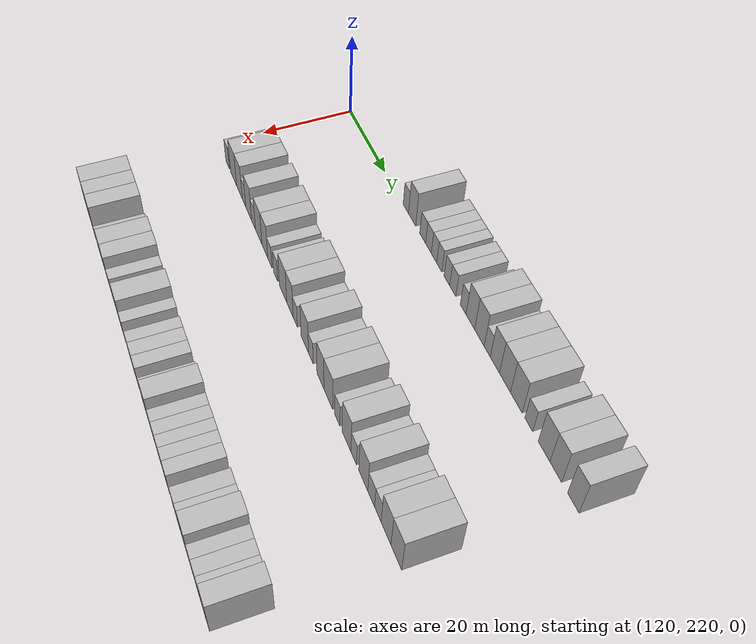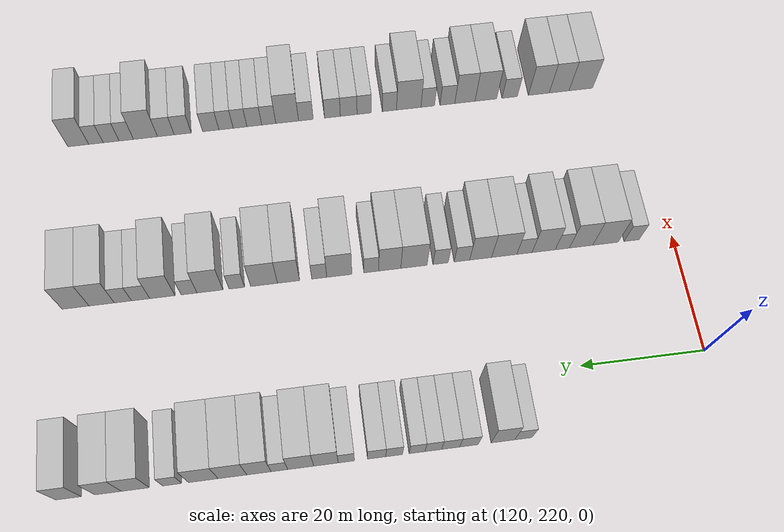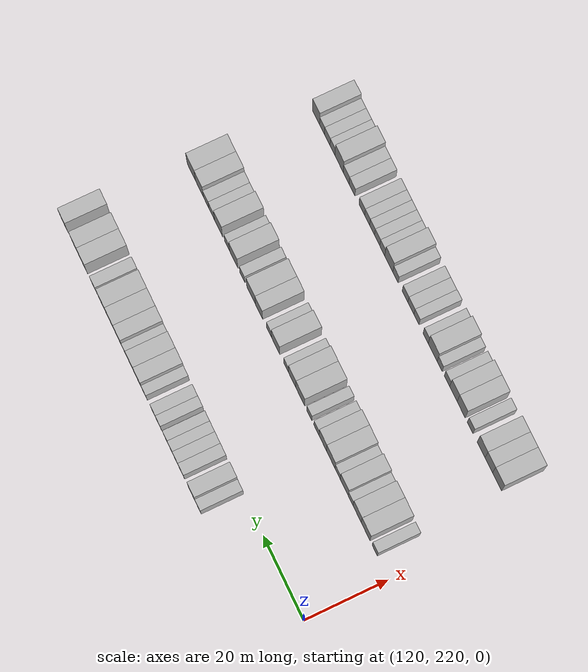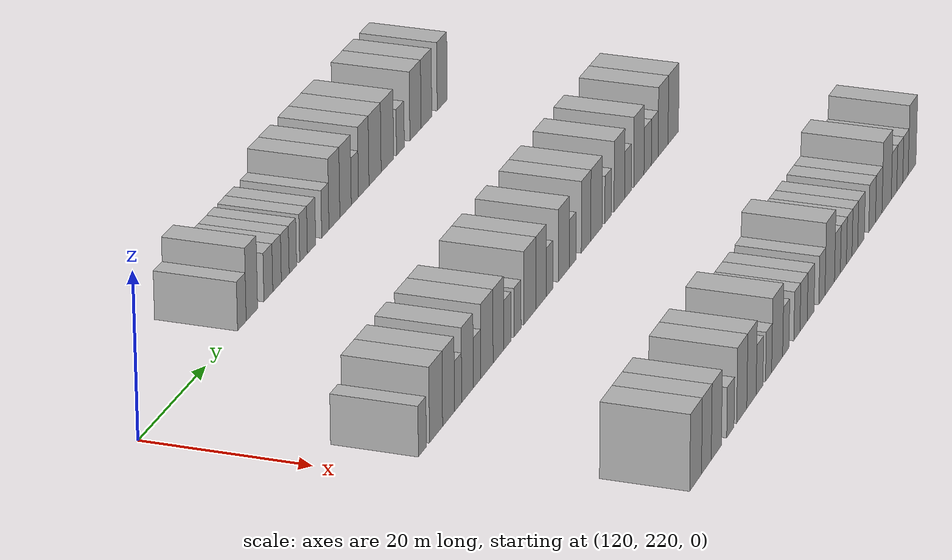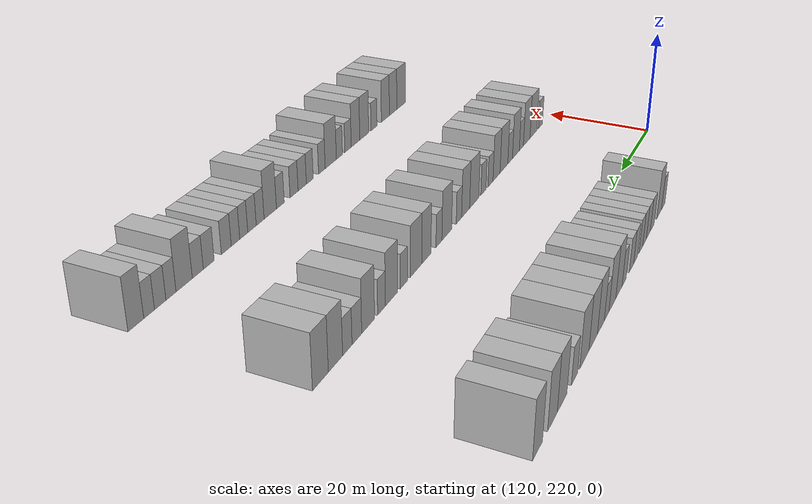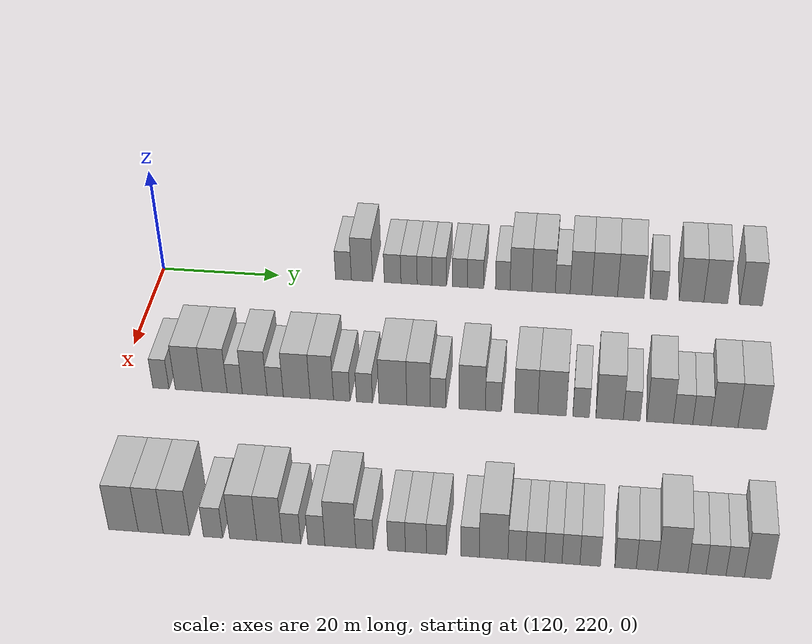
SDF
<sdf version="1.6">
 <world name="default">
  <model name="building_852">
   <static>1</static>
   <pose>115.0000 251.1796 0 0.000000 0.000000 0.000000</pose>
   <link name="link">
    <pose>0 0 3.00 0 0 0</pose>
    <collision name="collision"><geometry><box><size>10.0000 2.7214 6.0000</size></box></geometry></collision>
    <visual name="visual">
     <cast_shadows>0</cast_shadows>
     <geometry><box><size>10.0000 2.7214 6.0000</size></box></geometry>
     <material>
      <script>
       <uri>model://HANNAS_wall/materials/scripts</uri>
       <uri>model://HANNAS_wall/materials/textures</uri>
       <name>vrc/HANNAS_wall</name>
      </script>
     </material>
    </visual>
   </link>
  </model>
  <model name="building_853">
   <static>1</static>
   <pose>115.0000 254.3532 0 0.000000 0.000000 0.000000</pose>
   <link name="link">
    <pose>0 0 4.50 0 0 0</pose>
    <collision name="collision"><geometry><box><size>10.0000 3.6258 9.0000</size></box></geometry></collision>
    <visual name="visual">
     <cast_shadows>0</cast_shadows>
     <geometry><box><size>10.0000 3.6258 9.0000</size></box></geometry>
     <material>
      <script>
       <uri>model://HANNAS_wall/materials/scripts</uri>
       <uri>model://HANNAS_wall/materials/textures</uri>
       <name>vrc/HANNAS_wall</name>
      </script>
     </material>
    </visual>
   </link>
  </model>
  <model name="building_854">
   <static>1</static>
   <pose>115.0000 259.5943 0 0.000000 0.000000 0.000000</pose>
   <link name="link">
    <pose>0 0 3.00 0 0 0</pose>
    <collision name="collision"><geometry><box><size>10.0000 2.8563 6.0000</size></box></geometry></collision>
    <visual name="visual">
     <cast_shadows>0</cast_shadows>
     <geometry><box><size>10.0000 2.8563 6.0000</size></box></geometry>
     <material>
      <script>
       <uri>model://HANNAS_wall/materials/scripts</uri>
       <uri>model://HANNAS_wall/materials/textures</uri>
       <name>vrc/HANNAS_wall</name>
      </script>
     </material>
    </visual>
   </link>
  </model>
  <model name="building_855">
   <static>1</static>
   <pose>115.0000 262.4086 0 0.000000 0.000000 0.000000</pose>
   <link name="link">
    <pose>0 0 3.00 0 0 0</pose>
    <collision name="collision"><geometry><box><size>10.0000 2.7723 6.0000</size></box></geometry></collision>
    <visual name="visual">
     <cast_shadows>0</cast_shadows>
     <geometry><box><size>10.0000 2.7723 6.0000</size></box></geometry>
     <material>
      <script>
       <uri>model://HANNAS_wall/materials/scripts</uri>
       <uri>model://HANNAS_wall/materials/textures</uri>
       <name>vrc/HANNAS_wall</name>
      </script>
     </material>
    </visual>
   </link>
  </model>
  <model name="building_856">
   <static>1</static>
   <pose>115.0000 265.0677 0 0.000000 0.000000 0.000000</pose>
   <link name="link">
    <pose>0 0 3.00 0 0 0</pose>
    <collision name="collision"><geometry><box><size>10.0000 2.5458 6.0000</size></box></geometry></collision>
    <visual name="visual">
     <cast_shadows>0</cast_shadows>
     <geometry><box><size>10.0000 2.5458 6.0000</size></box></geometry>
     <material>
      <script>
       <uri>model://HANNAS_wall/materials/scripts</uri>
       <uri>model://HANNAS_wall/materials/textures</uri>
       <name>vrc/HANNAS_wall</name>
      </script>
     </material>
    </visual>
   </link>
  </model>
  <model name="building_857">
   <static>1</static>
   <pose>115.0000 267.5563 0 0.000000 0.000000 0.000000</pose>
   <link name="link">
    <pose>0 0 3.00 0 0 0</pose>
    <collision name="collision"><geometry><box><size>10.0000 2.4315 6.0000</size></box></geometry></collision>
    <visual name="visual">
     <cast_shadows>0</cast_shadows>
     <geometry><box><size>10.0000 2.4315 6.0000</size></box></geometry>
     <material>
      <script>
       <uri>model://HANNAS_wall/materials/scripts</uri>
       <uri>model://HANNAS_wall/materials/textures</uri>
       <name>vrc/HANNAS_wall</name>
      </script>
     </material>
    </visual>
   </link>
  </model>
  <model name="building_858">
   <static>1</static>
   <pose>115.0000 271.0531 0 0.000000 0.000000 0.000000</pose>
   <link name="link">
    <pose>0 0 3.00 0 0 0</pose>
    <collision name="collision"><geometry><box><size>10.0000 2.5620 6.0000</size></box></geometry></collision>
    <visual name="visual">
     <cast_shadows>0</cast_shadows>
     <geometry><box><size>10.0000 2.5620 6.0000</size></box></geometry>
     <material>
      <script>
       <uri>model://HANNAS_wall/materials/scripts</uri>
       <uri>model://HANNAS_wall/materials/textures</uri>
       <name>vrc/HANNAS_wall</name>
      </script>
     </material>
    </visual>
   </link>
  </model>
  <model name="building_859">
   <static>1</static>
   <pose>115.0000 273.7170 0 0.000000 0.000000 0.000000</pose>
   <link name="link">
    <pose>0 0 3.00 0 0 0</pose>
    <collision name="collision"><geometry><box><size>10.0000 2.7659 6.0000</size></box></geometry></collision>
    <visual name="visual">
     <cast_shadows>0</cast_shadows>
     <geometry><box><size>10.0000 2.7659 6.0000</size></box></geometry>
     <material>
      <script>
       <uri>model://HANNAS_wall/materials/scripts</uri>
       <uri>model://HANNAS_wall/materials/textures</uri>
       <name>vrc/HANNAS_wall</name>
      </script>
     </material>
    </visual>
   </link>
  </model>
  <model name="building_860">
   <static>1</static>
   <pose>115.0000 278.3298 0 0.000000 0.000000 0.000000</pose>
   <link name="link">
    <pose>0 0 3.00 0 0 0</pose>
    <collision name="collision"><geometry><box><size>10.0000 2.4597 6.0000</size></box></geometry></collision>
    <visual name="visual">
     <cast_shadows>0</cast_shadows>
     <geometry><box><size>10.0000 2.4597 6.0000</size></box></geometry>
     <material>
      <script>
       <uri>model://HANNAS_wall/materials/scripts</uri>
       <uri>model://HANNAS_wall/materials/textures</uri>
       <name>vrc/HANNAS_wall</name>
      </script>
     </material>
    </visual>
   </link>
  </model>
  <model name="building_861">
   <static>1</static>
   <pose>115.0000 281.4164 0 0.000000 0.000000 0.000000</pose>
   <link name="link">
    <pose>0 0 4.50 0 0 0</pose>
    <collision name="collision"><geometry><box><size>10.0000 3.7134 9.0000</size></box></geometry></collision>
    <visual name="visual">
     <cast_shadows>0</cast_shadows>
     <geometry><box><size>10.0000 3.7134 9.0000</size></box></geometry>
     <material>
      <script>
       <uri>model://HANNAS_wall/materials/scripts</uri>
       <uri>model://HANNAS_wall/materials/textures</uri>
       <name>vrc/HANNAS_wall</name>
      </script>
     </material>
    </visual>
   </link>
  </model>
  <model name="building_862">
   <static>1</static>
   <pose>115.0000 285.2336 0 0.000000 0.000000 0.000000</pose>
   <link name="link">
    <pose>0 0 4.50 0 0 0</pose>
    <collision name="collision"><geometry><box><size>10.0000 3.9210 9.0000</size></box></geometry></collision>
    <visual name="visual">
     <cast_shadows>0</cast_shadows>
     <geometry><box><size>10.0000 3.9210 9.0000</size></box></geometry>
     <material>
      <script>
       <uri>model://HANNAS_wall/materials/scripts</uri>
       <uri>model://HANNAS_wall/materials/textures</uri>
       <name>vrc/HANNAS_wall</name>
      </script>
     </material>
    </visual>
   </link>
  </model>
  <model name="building_863">
   <static>1</static>
   <pose>115.0000 288.4431 0 0.000000 0.000000 0.000000</pose>
   <link name="link">
    <pose>0 0 3.00 0 0 0</pose>
    <collision name="collision"><geometry><box><size>10.0000 2.4979 6.0000</size></box></geometry></collision>
    <visual name="visual">
     <cast_shadows>0</cast_shadows>
     <geometry><box><size>10.0000 2.4979 6.0000</size></box></geometry>
     <material>
      <script>
       <uri>model://HANNAS_wall/materials/scripts</uri>
       <uri>model://HANNAS_wall/materials/textures</uri>
       <name>vrc/HANNAS_wall</name>
      </script>
     </material>
    </visual>
   </link>
  </model>
  <model name="building_864">
   <static>1</static>
   <pose>115.0000 291.5206 0 0.000000 0.000000 0.000000</pose>
   <link name="link">
    <pose>0 0 4.50 0 0 0</pose>
    <collision name="collision"><geometry><box><size>10.0000 3.6571 9.0000</size></box></geometry></collision>
    <visual name="visual">
     <cast_shadows>0</cast_shadows>
     <geometry><box><size>10.0000 3.6571 9.0000</size></box></geometry>
     <material>
      <script>
       <uri>model://HANNAS_wall/materials/scripts</uri>
       <uri>model://HANNAS_wall/materials/textures</uri>
       <name>vrc/HANNAS_wall</name>
      </script>
     </material>
    </visual>
   </link>
  </model>
  <model name="building_865">
   <static>1</static>
   <pose>115.0000 295.4955 0 0.000000 0.000000 0.000000</pose>
   <link name="link">
    <pose>0 0 4.50 0 0 0</pose>
    <collision name="collision"><geometry><box><size>10.0000 4.2928 9.0000</size></box></geometry></collision>
    <visual name="visual">
     <cast_shadows>0</cast_shadows>
     <geometry><box><size>10.0000 4.2928 9.0000</size></box></geometry>
     <material>
      <script>
       <uri>model://HANNAS_wall/materials/scripts</uri>
       <uri>model://HANNAS_wall/materials/textures</uri>
       <name>vrc/HANNAS_wall</name>
      </script>
     </material>
    </visual>
   </link>
  </model>
  <model name="building_866">
   <static>1</static>
   <pose>115.0000 299.8686 0 0.000000 0.000000 0.000000</pose>
   <link name="link">
    <pose>0 0 4.50 0 0 0</pose>
    <collision name="collision"><geometry><box><size>10.0000 4.4534 9.0000</size></box></geometry></collision>
    <visual name="visual">
     <cast_shadows>0</cast_shadows>
     <geometry><box><size>10.0000 4.4534 9.0000</size></box></geometry>
     <material>
      <script>
       <uri>model://HANNAS_wall/materials/scripts</uri>
       <uri>model://HANNAS_wall/materials/textures</uri>
       <name>vrc/HANNAS_wall</name>
      </script>
     </material>
    </visual>
   </link>
  </model>
  <model name="building_867">
   <static>1</static>
   <pose>115.0000 304.5159 0 0.000000 0.000000 0.000000</pose>
   <link name="link">
    <pose>0 0 3.00 0 0 0</pose>
    <collision name="collision"><geometry><box><size>10.0000 2.8411 6.0000</size></box></geometry></collision>
    <visual name="visual">
     <cast_shadows>0</cast_shadows>
     <geometry><box><size>10.0000 2.8411 6.0000</size></box></geometry>
     <material>
      <script>
       <uri>model://HANNAS_wall/materials/scripts</uri>
       <uri>model://HANNAS_wall/materials/textures</uri>
       <name>vrc/HANNAS_wall</name>
      </script>
     </material>
    </visual>
   </link>
  </model>
  <model name="building_868">
   <static>1</static>
   <pose>115.0000 309.9934 0 0.000000 0.000000 0.000000</pose>
   <link name="link">
    <pose>0 0 4.50 0 0 0</pose>
    <collision name="collision"><geometry><box><size>10.0000 4.1139 9.0000</size></box></geometry></collision>
    <visual name="visual">
     <cast_shadows>0</cast_shadows>
     <geometry><box><size>10.0000 4.1139 9.0000</size></box></geometry>
     <material>
      <script>
       <uri>model://HANNAS_wall/materials/scripts</uri>
       <uri>model://HANNAS_wall/materials/textures</uri>
       <name>vrc/HANNAS_wall</name>
      </script>
     </material>
    </visual>
   </link>
  </model>
  <model name="building_869">
   <static>1</static>
   <pose>115.0000 314.0268 0 0.000000 0.000000 0.000000</pose>
   <link name="link">
    <pose>0 0 4.50 0 0 0</pose>
    <collision name="collision"><geometry><box><size>10.0000 3.9529 9.0000</size></box></geometry></collision>
    <visual name="visual">
     <cast_shadows>0</cast_shadows>
     <geometry><box><size>10.0000 3.9529 9.0000</size></box></geometry>
     <material>
      <script>
       <uri>model://HANNAS_wall/materials/scripts</uri>
       <uri>model://HANNAS_wall/materials/textures</uri>
       <name>vrc/HANNAS_wall</name>
      </script>
     </material>
    </visual>
   </link>
  </model>
  <model name="building_870">
   <static>1</static>
   <pose>115.0000 319.8825 0 0.000000 0.000000 0.000000</pose>
   <link name="link">
    <pose>0 0 4.50 0 0 0</pose>
    <collision name="collision"><geometry><box><size>10.0000 3.7586 9.0000</size></box></geometry></collision>
    <visual name="visual">
     <cast_shadows>0</cast_shadows>
     <geometry><box><size>10.0000 3.7586 9.0000</size></box></geometry>
     <material>
      <script>
       <uri>model://HANNAS_wall/materials/scripts</uri>
       <uri>model://HANNAS_wall/materials/textures</uri>
       <name>vrc/HANNAS_wall</name>
      </script>
     </material>
    </visual>
   </link>
  </model>
  <model name="building_1075">
   <static>1</static>
   <pose>145.0000 226.8529 0 0.000000 0.000000 0.000000</pose>
   <link name="link">
    <pose>0 0 3.00 0 0 0</pose>
    <collision name="collision"><geometry><box><size>10.0000 2.5886 6.0000</size></box></geometry></collision>
    <visual name="visual">
     <cast_shadows>0</cast_shadows>
     <geometry><box><size>10.0000 2.5886 6.0000</size></box></geometry>
     <material>
      <script>
       <uri>model://HANNAS_wall/materials/scripts</uri>
       <uri>model://HANNAS_wall/materials/textures</uri>
       <name>vrc/HANNAS_wall</name>
      </script>
     </material>
    </visual>
   </link>
  </model>
  <model name="building_1076">
   <static>1</static>
   <pose>145.0000 231.3053 0 0.000000 0.000000 0.000000</pose>
   <link name="link">
    <pose>0 0 4.50 0 0 0</pose>
    <collision name="collision"><geometry><box><size>10.0000 4.3162 9.0000</size></box></geometry></collision>
    <visual name="visual">
     <cast_shadows>0</cast_shadows>
     <geometry><box><size>10.0000 4.3162 9.0000</size></box></geometry>
     <material>
      <script>
       <uri>model://HANNAS_wall/materials/scripts</uri>
       <uri>model://HANNAS_wall/materials/textures</uri>
       <name>vrc/HANNAS_wall</name>
      </script>
     </material>
    </visual>
   </link>
  </model>
  <model name="building_1077">
   <static>1</static>
   <pose>145.0000 235.4416 0 0.000000 0.000000 0.000000</pose>
   <link name="link">
    <pose>0 0 4.50 0 0 0</pose>
    <collision name="collision"><geometry><box><size>10.0000 3.9563 9.0000</size></box></geometry></collision>
    <visual name="visual">
     <cast_shadows>0</cast_shadows>
     <geometry><box><size>10.0000 3.9563 9.0000</size></box></geometry>
     <material>
      <script>
       <uri>model://HANNAS_wall/materials/scripts</uri>
       <uri>model://HANNAS_wall/materials/textures</uri>
       <name>vrc/HANNAS_wall</name>
      </script>
     </material>
    </visual>
   </link>
  </model>
  <model name="building_1078">
   <static>1</static>
   <pose>145.0000 238.6223 0 0.000000 0.000000 0.000000</pose>
   <link name="link">
    <pose>0 0 3.00 0 0 0</pose>
    <collision name="collision"><geometry><box><size>10.0000 2.4051 6.0000</size></box></geometry></collision>
    <visual name="visual">
     <cast_shadows>0</cast_shadows>
     <geometry><box><size>10.0000 2.4051 6.0000</size></box></geometry>
     <material>
      <script>
       <uri>model://HANNAS_wall/materials/scripts</uri>
       <uri>model://HANNAS_wall/materials/textures</uri>
       <name>vrc/HANNAS_wall</name>
      </script>
     </material>
    </visual>
   </link>
  </model>
  <model name="building_1079">
   <static>1</static>
   <pose>145.0000 241.7903 0 0.000000 0.000000 0.000000</pose>
   <link name="link">
    <pose>0 0 4.50 0 0 0</pose>
    <collision name="collision"><geometry><box><size>10.0000 3.9309 9.0000</size></box></geometry></collision>
    <visual name="visual">
     <cast_shadows>0</cast_shadows>
     <geometry><box><size>10.0000 3.9309 9.0000</size></box></geometry>
     <material>
      <script>
       <uri>model://HANNAS_wall/materials/scripts</uri>
       <uri>model://HANNAS_wall/materials/textures</uri>
       <name>vrc/HANNAS_wall</name>
      </script>
     </material>
    </visual>
   </link>
  </model>
  <model name="building_1080">
   <static>1</static>
   <pose>145.0000 245.0362 0 0.000000 0.000000 0.000000</pose>
   <link name="link">
    <pose>0 0 3.00 0 0 0</pose>
    <collision name="collision"><geometry><box><size>10.0000 2.5610 6.0000</size></box></geometry></collision>
    <visual name="visual">
     <cast_shadows>0</cast_shadows>
     <geometry><box><size>10.0000 2.5610 6.0000</size></box></geometry>
     <material>
      <script>
       <uri>model://HANNAS_wall/materials/scripts</uri>
       <uri>model://HANNAS_wall/materials/textures</uri>
       <name>vrc/HANNAS_wall</name>
      </script>
     </material>
    </visual>
   </link>
  </model>
  <model name="building_1081">
   <static>1</static>
   <pose>145.0000 248.4327 0 0.000000 0.000000 0.000000</pose>
   <link name="link">
    <pose>0 0 4.50 0 0 0</pose>
    <collision name="collision"><geometry><box><size>10.0000 4.2321 9.0000</size></box></geometry></collision>
    <visual name="visual">
     <cast_shadows>0</cast_shadows>
     <geometry><box><size>10.0000 4.2321 9.0000</size></box></geometry>
     <material>
      <script>
       <uri>model://HANNAS_wall/materials/scripts</uri>
       <uri>model://HANNAS_wall/materials/textures</uri>
       <name>vrc/HANNAS_wall</name>
      </script>
     </material>
    </visual>
   </link>
  </model>
  <model name="building_1082">
   <static>1</static>
   <pose>145.0000 252.3898 0 0.000000 0.000000 0.000000</pose>
   <link name="link">
    <pose>0 0 4.50 0 0 0</pose>
    <collision name="collision"><geometry><box><size>10.0000 3.6821 9.0000</size></box></geometry></collision>
    <visual name="visual">
     <cast_shadows>0</cast_shadows>
     <geometry><box><size>10.0000 3.6821 9.0000</size></box></geometry>
     <material>
      <script>
       <uri>model://HANNAS_wall/materials/scripts</uri>
       <uri>model://HANNAS_wall/materials/textures</uri>
       <name>vrc/HANNAS_wall</name>
      </script>
     </material>
    </visual>
   </link>
  </model>
  <model name="building_1083">
   <static>1</static>
   <pose>145.0000 255.5272 0 0.000000 0.000000 0.000000</pose>
   <link name="link">
    <pose>0 0 3.00 0 0 0</pose>
    <collision name="collision"><geometry><box><size>10.0000 2.5927 6.0000</size></box></geometry></collision>
    <visual name="visual">
     <cast_shadows>0</cast_shadows>
     <geometry><box><size>10.0000 2.5927 6.0000</size></box></geometry>
     <material>
      <script>
       <uri>model://HANNAS_wall/materials/scripts</uri>
       <uri>model://HANNAS_wall/materials/textures</uri>
       <name>vrc/HANNAS_wall</name>
      </script>
     </material>
    </visual>
   </link>
  </model>
  <model name="building_1084">
   <static>1</static>
   <pose>145.0000 259.0895 0 0.000000 0.000000 0.000000</pose>
   <link name="link">
    <pose>0 0 3.00 0 0 0</pose>
    <collision name="collision"><geometry><box><size>10.0000 2.5318 6.0000</size></box></geometry></collision>
    <visual name="visual">
     <cast_shadows>0</cast_shadows>
     <geometry><box><size>10.0000 2.5318 6.0000</size></box></geometry>
     <material>
      <script>
       <uri>model://HANNAS_wall/materials/scripts</uri>
       <uri>model://HANNAS_wall/materials/textures</uri>
       <name>vrc/HANNAS_wall</name>
      </script>
     </material>
    </visual>
   </link>
  </model>
  <model name="building_1085">
   <static>1</static>
   <pose>145.0000 263.5337 0 0.000000 0.000000 0.000000</pose>
   <link name="link">
    <pose>0 0 4.50 0 0 0</pose>
    <collision name="collision"><geometry><box><size>10.0000 4.3566 9.0000</size></box></geometry></collision>
    <visual name="visual">
     <cast_shadows>0</cast_shadows>
     <geometry><box><size>10.0000 4.3566 9.0000</size></box></geometry>
     <material>
      <script>
       <uri>model://HANNAS_wall/materials/scripts</uri>
       <uri>model://HANNAS_wall/materials/textures</uri>
       <name>vrc/HANNAS_wall</name>
      </script>
     </material>
    </visual>
   </link>
  </model>
  <model name="building_1086">
   <static>1</static>
   <pose>145.0000 267.5475 0 0.000000 0.000000 0.000000</pose>
   <link name="link">
    <pose>0 0 4.50 0 0 0</pose>
    <collision name="collision"><geometry><box><size>10.0000 3.6710 9.0000</size></box></geometry></collision>
    <visual name="visual">
     <cast_shadows>0</cast_shadows>
     <geometry><box><size>10.0000 3.6710 9.0000</size></box></geometry>
     <material>
      <script>
       <uri>model://HANNAS_wall/materials/scripts</uri>
       <uri>model://HANNAS_wall/materials/textures</uri>
       <name>vrc/HANNAS_wall</name>
      </script>
     </material>
    </visual>
   </link>
  </model>
  <model name="building_1087">
   <static>1</static>
   <pose>145.0000 270.5986 0 0.000000 0.000000 0.000000</pose>
   <link name="link">
    <pose>0 0 3.00 0 0 0</pose>
    <collision name="collision"><geometry><box><size>10.0000 2.4311 6.0000</size></box></geometry></collision>
    <visual name="visual">
     <cast_shadows>0</cast_shadows>
     <geometry><box><size>10.0000 2.4311 6.0000</size></box></geometry>
     <material>
      <script>
       <uri>model://HANNAS_wall/materials/scripts</uri>
       <uri>model://HANNAS_wall/materials/textures</uri>
       <name>vrc/HANNAS_wall</name>
      </script>
     </material>
    </visual>
   </link>
  </model>
  <model name="building_1088">
   <static>1</static>
   <pose>145.0000 275.8796 0 0.000000 0.000000 0.000000</pose>
   <link name="link">
    <pose>0 0 4.50 0 0 0</pose>
    <collision name="collision"><geometry><box><size>10.0000 4.1308 9.0000</size></box></geometry></collision>
    <visual name="visual">
     <cast_shadows>0</cast_shadows>
     <geometry><box><size>10.0000 4.1308 9.0000</size></box></geometry>
     <material>
      <script>
       <uri>model://HANNAS_wall/materials/scripts</uri>
       <uri>model://HANNAS_wall/materials/textures</uri>
       <name>vrc/HANNAS_wall</name>
      </script>
     </material>
    </visual>
   </link>
  </model>
  <model name="building_1089">
   <static>1</static>
   <pose>145.0000 279.1796 0 0.000000 0.000000 0.000000</pose>
   <link name="link">
    <pose>0 0 3.00 0 0 0</pose>
    <collision name="collision"><geometry><box><size>10.0000 2.4693 6.0000</size></box></geometry></collision>
    <visual name="visual">
     <cast_shadows>0</cast_shadows>
     <geometry><box><size>10.0000 2.4693 6.0000</size></box></geometry>
     <material>
      <script>
       <uri>model://HANNAS_wall/materials/scripts</uri>
       <uri>model://HANNAS_wall/materials/textures</uri>
       <name>vrc/HANNAS_wall</name>
      </script>
     </material>
    </visual>
   </link>
  </model>
  <model name="building_1090">
   <static>1</static>
   <pose>145.0000 284.2226 0 0.000000 0.000000 0.000000</pose>
   <link name="link">
    <pose>0 0 4.50 0 0 0</pose>
    <collision name="collision"><geometry><box><size>10.0000 3.6167 9.0000</size></box></geometry></collision>
    <visual name="visual">
     <cast_shadows>0</cast_shadows>
     <geometry><box><size>10.0000 3.6167 9.0000</size></box></geometry>
     <material>
      <script>
       <uri>model://HANNAS_wall/materials/scripts</uri>
       <uri>model://HANNAS_wall/materials/textures</uri>
       <name>vrc/HANNAS_wall</name>
      </script>
     </material>
    </visual>
   </link>
  </model>
  <model name="building_1091">
   <static>1</static>
   <pose>145.0000 288.2230 0 0.000000 0.000000 0.000000</pose>
   <link name="link">
    <pose>0 0 4.50 0 0 0</pose>
    <collision name="collision"><geometry><box><size>10.0000 4.3840 9.0000</size></box></geometry></collision>
    <visual name="visual">
     <cast_shadows>0</cast_shadows>
     <geometry><box><size>10.0000 4.3840 9.0000</size></box></geometry>
     <material>
      <script>
       <uri>model://HANNAS_wall/materials/scripts</uri>
       <uri>model://HANNAS_wall/materials/textures</uri>
       <name>vrc/HANNAS_wall</name>
      </script>
     </material>
    </visual>
   </link>
  </model>
  <model name="building_1092">
   <static>1</static>
   <pose>145.0000 292.6868 0 0.000000 0.000000 0.000000</pose>
   <link name="link">
    <pose>0 0 3.00 0 0 0</pose>
    <collision name="collision"><geometry><box><size>10.0000 2.5436 6.0000</size></box></geometry></collision>
    <visual name="visual">
     <cast_shadows>0</cast_shadows>
     <geometry><box><size>10.0000 2.5436 6.0000</size></box></geometry>
     <material>
      <script>
       <uri>model://HANNAS_wall/materials/scripts</uri>
       <uri>model://HANNAS_wall/materials/textures</uri>
       <name>vrc/HANNAS_wall</name>
      </script>
     </material>
    </visual>
   </link>
  </model>
  <model name="building_1093">
   <static>1</static>
   <pose>145.0000 297.0579 0 0.000000 0.000000 0.000000</pose>
   <link name="link">
    <pose>0 0 4.50 0 0 0</pose>
    <collision name="collision"><geometry><box><size>10.0000 4.1986 9.0000</size></box></geometry></collision>
    <visual name="visual">
     <cast_shadows>0</cast_shadows>
     <geometry><box><size>10.0000 4.1986 9.0000</size></box></geometry>
     <material>
      <script>
       <uri>model://HANNAS_wall/materials/scripts</uri>
       <uri>model://HANNAS_wall/materials/textures</uri>
       <name>vrc/HANNAS_wall</name>
      </script>
     </material>
    </visual>
   </link>
  </model>
  <model name="building_1094">
   <static>1</static>
   <pose>145.0000 300.4488 0 0.000000 0.000000 0.000000</pose>
   <link name="link">
    <pose>0 0 3.00 0 0 0</pose>
    <collision name="collision"><geometry><box><size>10.0000 2.5832 6.0000</size></box></geometry></collision>
    <visual name="visual">
     <cast_shadows>0</cast_shadows>
     <geometry><box><size>10.0000 2.5832 6.0000</size></box></geometry>
     <material>
      <script>
       <uri>model://HANNAS_wall/materials/scripts</uri>
       <uri>model://HANNAS_wall/materials/textures</uri>
       <name>vrc/HANNAS_wall</name>
      </script>
     </material>
    </visual>
   </link>
  </model>
  <model name="building_1095">
   <static>1</static>
   <pose>145.0000 304.7752 0 0.000000 0.000000 0.000000</pose>
   <link name="link">
    <pose>0 0 4.50 0 0 0</pose>
    <collision name="collision"><geometry><box><size>10.0000 4.0697 9.0000</size></box></geometry></collision>
    <visual name="visual">
     <cast_shadows>0</cast_shadows>
     <geometry><box><size>10.0000 4.0697 9.0000</size></box></geometry>
     <material>
      <script>
       <uri>model://HANNAS_wall/materials/scripts</uri>
       <uri>model://HANNAS_wall/materials/textures</uri>
       <name>vrc/HANNAS_wall</name>
      </script>
     </material>
    </visual>
   </link>
  </model>
  <model name="building_1096">
   <static>1</static>
   <pose>145.0000 308.2845 0 0.000000 0.000000 0.000000</pose>
   <link name="link">
    <pose>0 0 3.00 0 0 0</pose>
    <collision name="collision"><geometry><box><size>10.0000 2.9488 6.0000</size></box></geometry></collision>
    <visual name="visual">
     <cast_shadows>0</cast_shadows>
     <geometry><box><size>10.0000 2.9488 6.0000</size></box></geometry>
     <material>
      <script>
       <uri>model://HANNAS_wall/materials/scripts</uri>
       <uri>model://HANNAS_wall/materials/textures</uri>
       <name>vrc/HANNAS_wall</name>
      </script>
     </material>
    </visual>
   </link>
  </model>
  <model name="building_1097">
   <static>1</static>
   <pose>145.0000 311.1475 0 0.000000 0.000000 0.000000</pose>
   <link name="link">
    <pose>0 0 3.00 0 0 0</pose>
    <collision name="collision"><geometry><box><size>10.0000 2.7772 6.0000</size></box></geometry></collision>
    <visual name="visual">
     <cast_shadows>0</cast_shadows>
     <geometry><box><size>10.0000 2.7772 6.0000</size></box></geometry>
     <material>
      <script>
       <uri>model://HANNAS_wall/materials/scripts</uri>
       <uri>model://HANNAS_wall/materials/textures</uri>
       <name>vrc/HANNAS_wall</name>
      </script>
     </material>
    </visual>
   </link>
  </model>
  <model name="building_1098">
   <static>1</static>
   <pose>145.0000 314.5688 0 0.000000 0.000000 0.000000</pose>
   <link name="link">
    <pose>0 0 4.50 0 0 0</pose>
    <collision name="collision"><geometry><box><size>10.0000 4.0653 9.0000</size></box></geometry></collision>
    <visual name="visual">
     <cast_shadows>0</cast_shadows>
     <geometry><box><size>10.0000 4.0653 9.0000</size></box></geometry>
     <material>
      <script>
       <uri>model://HANNAS_wall/materials/scripts</uri>
       <uri>model://HANNAS_wall/materials/textures</uri>
       <name>vrc/HANNAS_wall</name>
      </script>
     </material>
    </visual>
   </link>
  </model>
  <model name="building_1099">
   <static>1</static>
   <pose>145.0000 318.7576 0 0.000000 0.000000 0.000000</pose>
   <link name="link">
    <pose>0 0 4.50 0 0 0</pose>
    <collision name="collision"><geometry><box><size>10.0000 4.3122 9.0000</size></box></geometry></collision>
    <visual name="visual">
     <cast_shadows>0</cast_shadows>
     <geometry><box><size>10.0000 4.3122 9.0000</size></box></geometry>
     <material>
      <script>
       <uri>model://HANNAS_wall/materials/scripts</uri>
       <uri>model://HANNAS_wall/materials/textures</uri>
       <name>vrc/HANNAS_wall</name>
      </script>
     </material>
    </visual>
   </link>
  </model>
  <model name="building_1300">
   <static>1</static>
   <pose>175.0000 228.7708 0 0.000000 0.000000 0.000000</pose>
   <link name="link">
    <pose>0 0 4.50 0 0 0</pose>
    <collision name="collision"><geometry><box><size>10.0000 4.3146 9.0000</size></box></geometry></collision>
    <visual name="visual">
     <cast_shadows>0</cast_shadows>
     <geometry><box><size>10.0000 4.3146 9.0000</size></box></geometry>
     <material>
      <script>
       <uri>model://HANNAS_wall/materials/scripts</uri>
       <uri>model://HANNAS_wall/materials/textures</uri>
       <name>vrc/HANNAS_wall</name>
      </script>
     </material>
    </visual>
   </link>
  </model>
  <model name="building_1301">
   <static>1</static>
   <pose>175.0000 232.7367 0 0.000000 0.000000 0.000000</pose>
   <link name="link">
    <pose>0 0 4.50 0 0 0</pose>
    <collision name="collision"><geometry><box><size>10.0000 3.6171 9.0000</size></box></geometry></collision>
    <visual name="visual">
     <cast_shadows>0</cast_shadows>
     <geometry><box><size>10.0000 3.6171 9.0000</size></box></geometry>
     <material>
      <script>
       <uri>model://HANNAS_wall/materials/scripts</uri>
       <uri>model://HANNAS_wall/materials/textures</uri>
       <name>vrc/HANNAS_wall</name>
      </script>
     </material>
    </visual>
   </link>
  </model>
  <model name="building_1302">
   <static>1</static>
   <pose>175.0000 236.4458 0 0.000000 0.000000 0.000000</pose>
   <link name="link">
    <pose>0 0 4.50 0 0 0</pose>
    <collision name="collision"><geometry><box><size>10.0000 3.8011 9.0000</size></box></geometry></collision>
    <visual name="visual">
     <cast_shadows>0</cast_shadows>
     <geometry><box><size>10.0000 3.8011 9.0000</size></box></geometry>
     <material>
      <script>
       <uri>model://HANNAS_wall/materials/scripts</uri>
       <uri>model://HANNAS_wall/materials/textures</uri>
       <name>vrc/HANNAS_wall</name>
      </script>
     </material>
    </visual>
   </link>
  </model>
  <model name="building_1303">
   <static>1</static>
   <pose>175.0000 241.7332 0 0.000000 0.000000 0.000000</pose>
   <link name="link">
    <pose>0 0 3.00 0 0 0</pose>
    <collision name="collision"><geometry><box><size>10.0000 2.7738 6.0000</size></box></geometry></collision>
    <visual name="visual">
     <cast_shadows>0</cast_shadows>
     <geometry><box><size>10.0000 2.7738 6.0000</size></box></geometry>
     <material>
      <script>
       <uri>model://HANNAS_wall/materials/scripts</uri>
       <uri>model://HANNAS_wall/materials/textures</uri>
       <name>vrc/HANNAS_wall</name>
      </script>
     </material>
    </visual>
   </link>
  </model>
  <model name="building_1304">
   <static>1</static>
   <pose>175.0000 246.0745 0 0.000000 0.000000 0.000000</pose>
   <link name="link">
    <pose>0 0 4.50 0 0 0</pose>
    <collision name="collision"><geometry><box><size>10.0000 3.9087 9.0000</size></box></geometry></collision>
    <visual name="visual">
     <cast_shadows>0</cast_shadows>
     <geometry><box><size>10.0000 3.9087 9.0000</size></box></geometry>
     <material>
      <script>
       <uri>model://HANNAS_wall/materials/scripts</uri>
       <uri>model://HANNAS_wall/materials/textures</uri>
       <name>vrc/HANNAS_wall</name>
      </script>
     </material>
    </visual>
   </link>
  </model>
  <model name="building_1305">
   <static>1</static>
   <pose>175.0000 249.8479 0 0.000000 0.000000 0.000000</pose>
   <link name="link">
    <pose>0 0 4.50 0 0 0</pose>
    <collision name="collision"><geometry><box><size>10.0000 3.6381 9.0000</size></box></geometry></collision>
    <visual name="visual">
     <cast_shadows>0</cast_shadows>
     <geometry><box><size>10.0000 3.6381 9.0000</size></box></geometry>
     <material>
      <script>
       <uri>model://HANNAS_wall/materials/scripts</uri>
       <uri>model://HANNAS_wall/materials/textures</uri>
       <name>vrc/HANNAS_wall</name>
      </script>
     </material>
    </visual>
   </link>
  </model>
  <model name="building_1306">
   <static>1</static>
   <pose>175.0000 253.0000 0 0.000000 0.000000 0.000000</pose>
   <link name="link">
    <pose>0 0 3.00 0 0 0</pose>
    <collision name="collision"><geometry><box><size>10.0000 2.6660 6.0000</size></box></geometry></collision>
    <visual name="visual">
     <cast_shadows>0</cast_shadows>
     <geometry><box><size>10.0000 2.6660 6.0000</size></box></geometry>
     <material>
      <script>
       <uri>model://HANNAS_wall/materials/scripts</uri>
       <uri>model://HANNAS_wall/materials/textures</uri>
       <name>vrc/HANNAS_wall</name>
      </script>
     </material>
    </visual>
   </link>
  </model>
  <model name="building_1307">
   <static>1</static>
   <pose>175.0000 256.5515 0 0.000000 0.000000 0.000000</pose>
   <link name="link">
    <pose>0 0 3.00 0 0 0</pose>
    <collision name="collision"><geometry><box><size>10.0000 2.4371 6.0000</size></box></geometry></collision>
    <visual name="visual">
     <cast_shadows>0</cast_shadows>
     <geometry><box><size>10.0000 2.4371 6.0000</size></box></geometry>
     <material>
      <script>
       <uri>model://HANNAS_wall/materials/scripts</uri>
       <uri>model://HANNAS_wall/materials/textures</uri>
       <name>vrc/HANNAS_wall</name>
      </script>
     </material>
    </visual>
   </link>
  </model>
  <model name="building_1308">
   <static>1</static>
   <pose>175.0000 259.9685 0 0.000000 0.000000 0.000000</pose>
   <link name="link">
    <pose>0 0 4.50 0 0 0</pose>
    <collision name="collision"><geometry><box><size>10.0000 4.3968 9.0000</size></box></geometry></collision>
    <visual name="visual">
     <cast_shadows>0</cast_shadows>
     <geometry><box><size>10.0000 4.3968 9.0000</size></box></geometry>
     <material>
      <script>
       <uri>model://HANNAS_wall/materials/scripts</uri>
       <uri>model://HANNAS_wall/materials/textures</uri>
       <name>vrc/HANNAS_wall</name>
      </script>
     </material>
    </visual>
   </link>
  </model>
  <model name="building_1309">
   <static>1</static>
   <pose>175.0000 263.4309 0 0.000000 0.000000 0.000000</pose>
   <link name="link">
    <pose>0 0 3.00 0 0 0</pose>
    <collision name="collision"><geometry><box><size>10.0000 2.5280 6.0000</size></box></geometry></collision>
    <visual name="visual">
     <cast_shadows>0</cast_shadows>
     <geometry><box><size>10.0000 2.5280 6.0000</size></box></geometry>
     <material>
      <script>
       <uri>model://HANNAS_wall/materials/scripts</uri>
       <uri>model://HANNAS_wall/materials/textures</uri>
       <name>vrc/HANNAS_wall</name>
      </script>
     </material>
    </visual>
   </link>
  </model>
  <model name="building_1310">
   <static>1</static>
   <pose>175.0000 267.9523 0 0.000000 0.000000 0.000000</pose>
   <link name="link">
    <pose>0 0 3.00 0 0 0</pose>
    <collision name="collision"><geometry><box><size>10.0000 2.5149 6.0000</size></box></geometry></collision>
    <visual name="visual">
     <cast_shadows>0</cast_shadows>
     <geometry><box><size>10.0000 2.5149 6.0000</size></box></geometry>
     <material>
      <script>
       <uri>model://HANNAS_wall/materials/scripts</uri>
       <uri>model://HANNAS_wall/materials/textures</uri>
       <name>vrc/HANNAS_wall</name>
      </script>
     </material>
    </visual>
   </link>
  </model>
  <model name="building_1311">
   <static>1</static>
   <pose>175.0000 270.6988 0 0.000000 0.000000 0.000000</pose>
   <link name="link">
    <pose>0 0 3.00 0 0 0</pose>
    <collision name="collision"><geometry><box><size>10.0000 2.9782 6.0000</size></box></geometry></collision>
    <visual name="visual">
     <cast_shadows>0</cast_shadows>
     <geometry><box><size>10.0000 2.9782 6.0000</size></box></geometry>
     <material>
      <script>
       <uri>model://HANNAS_wall/materials/scripts</uri>
       <uri>model://HANNAS_wall/materials/textures</uri>
       <name>vrc/HANNAS_wall</name>
      </script>
     </material>
    </visual>
   </link>
  </model>
  <model name="building_1312">
   <static>1</static>
   <pose>175.0000 273.5981 0 0.000000 0.000000 0.000000</pose>
   <link name="link">
    <pose>0 0 3.00 0 0 0</pose>
    <collision name="collision"><geometry><box><size>10.0000 2.8204 6.0000</size></box></geometry></collision>
    <visual name="visual">
     <cast_shadows>0</cast_shadows>
     <geometry><box><size>10.0000 2.8204 6.0000</size></box></geometry>
     <material>
      <script>
       <uri>model://HANNAS_wall/materials/scripts</uri>
       <uri>model://HANNAS_wall/materials/textures</uri>
       <name>vrc/HANNAS_wall</name>
      </script>
     </material>
    </visual>
   </link>
  </model>
  <model name="building_1313">
   <static>1</static>
   <pose>175.0000 278.3120 0 0.000000 0.000000 0.000000</pose>
   <link name="link">
    <pose>0 0 3.00 0 0 0</pose>
    <collision name="collision"><geometry><box><size>10.0000 2.6073 6.0000</size></box></geometry></collision>
    <visual name="visual">
     <cast_shadows>0</cast_shadows>
     <geometry><box><size>10.0000 2.6073 6.0000</size></box></geometry>
     <material>
      <script>
       <uri>model://HANNAS_wall/materials/scripts</uri>
       <uri>model://HANNAS_wall/materials/textures</uri>
       <name>vrc/HANNAS_wall</name>
      </script>
     </material>
    </visual>
   </link>
  </model>
  <model name="building_1314">
   <static>1</static>
   <pose>175.0000 281.6268 0 0.000000 0.000000 0.000000</pose>
   <link name="link">
    <pose>0 0 4.50 0 0 0</pose>
    <collision name="collision"><geometry><box><size>10.0000 4.0222 9.0000</size></box></geometry></collision>
    <visual name="visual">
     <cast_shadows>0</cast_shadows>
     <geometry><box><size>10.0000 4.0222 9.0000</size></box></geometry>
     <material>
      <script>
       <uri>model://HANNAS_wall/materials/scripts</uri>
       <uri>model://HANNAS_wall/materials/textures</uri>
       <name>vrc/HANNAS_wall</name>
      </script>
     </material>
    </visual>
   </link>
  </model>
  <model name="building_1315">
   <static>1</static>
   <pose>175.0000 284.8855 0 0.000000 0.000000 0.000000</pose>
   <link name="link">
    <pose>0 0 3.00 0 0 0</pose>
    <collision name="collision"><geometry><box><size>10.0000 2.4954 6.0000</size></box></geometry></collision>
    <visual name="visual">
     <cast_shadows>0</cast_shadows>
     <geometry><box><size>10.0000 2.4954 6.0000</size></box></geometry>
     <material>
      <script>
       <uri>model://HANNAS_wall/materials/scripts</uri>
       <uri>model://HANNAS_wall/materials/textures</uri>
       <name>vrc/HANNAS_wall</name>
      </script>
     </material>
    </visual>
   </link>
  </model>
  <model name="building_1316">
   <static>1</static>
   <pose>175.0000 287.4418 0 0.000000 0.000000 0.000000</pose>
   <link name="link">
    <pose>0 0 3.00 0 0 0</pose>
    <collision name="collision"><geometry><box><size>10.0000 2.6171 6.0000</size></box></geometry></collision>
    <visual name="visual">
     <cast_shadows>0</cast_shadows>
     <geometry><box><size>10.0000 2.6171 6.0000</size></box></geometry>
     <material>
      <script>
       <uri>model://HANNAS_wall/materials/scripts</uri>
       <uri>model://HANNAS_wall/materials/textures</uri>
       <name>vrc/HANNAS_wall</name>
      </script>
     </material>
    </visual>
   </link>
  </model>
  <model name="building_1317">
   <static>1</static>
   <pose>175.0000 289.9612 0 0.000000 0.000000 0.000000</pose>
   <link name="link">
    <pose>0 0 3.00 0 0 0</pose>
    <collision name="collision"><geometry><box><size>10.0000 2.4218 6.0000</size></box></geometry></collision>
    <visual name="visual">
     <cast_shadows>0</cast_shadows>
     <geometry><box><size>10.0000 2.4218 6.0000</size></box></geometry>
     <material>
      <script>
       <uri>model://HANNAS_wall/materials/scripts</uri>
       <uri>model://HANNAS_wall/materials/textures</uri>
       <name>vrc/HANNAS_wall</name>
      </script>
     </material>
    </visual>
   </link>
  </model>
  <model name="building_1318">
   <static>1</static>
   <pose>175.0000 292.4207 0 0.000000 0.000000 0.000000</pose>
   <link name="link">
    <pose>0 0 3.00 0 0 0</pose>
    <collision name="collision"><geometry><box><size>10.0000 2.4971 6.0000</size></box></geometry></collision>
    <visual name="visual">
     <cast_shadows>0</cast_shadows>
     <geometry><box><size>10.0000 2.4971 6.0000</size></box></geometry>
     <material>
      <script>
       <uri>model://HANNAS_wall/materials/scripts</uri>
       <uri>model://HANNAS_wall/materials/textures</uri>
       <name>vrc/HANNAS_wall</name>
      </script>
     </material>
    </visual>
   </link>
  </model>
  <model name="building_1319">
   <static>1</static>
   <pose>175.0000 295.1005 0 0.000000 0.000000 0.000000</pose>
   <link name="link">
    <pose>0 0 3.00 0 0 0</pose>
    <collision name="collision"><geometry><box><size>10.0000 2.8625 6.0000</size></box></geometry></collision>
    <visual name="visual">
     <cast_shadows>0</cast_shadows>
     <geometry><box><size>10.0000 2.8625 6.0000</size></box></geometry>
     <material>
      <script>
       <uri>model://HANNAS_wall/materials/scripts</uri>
       <uri>model://HANNAS_wall/materials/textures</uri>
       <name>vrc/HANNAS_wall</name>
      </script>
     </material>
    </visual>
   </link>
  </model>
  <model name="building_1320">
   <static>1</static>
   <pose>175.0000 300.0188 0 0.000000 0.000000 0.000000</pose>
   <link name="link">
    <pose>0 0 3.00 0 0 0</pose>
    <collision name="collision"><geometry><box><size>10.0000 2.9742 6.0000</size></box></geometry></collision>
    <visual name="visual">
     <cast_shadows>0</cast_shadows>
     <geometry><box><size>10.0000 2.9742 6.0000</size></box></geometry>
     <material>
      <script>
       <uri>model://HANNAS_wall/materials/scripts</uri>
       <uri>model://HANNAS_wall/materials/textures</uri>
       <name>vrc/HANNAS_wall</name>
      </script>
     </material>
    </visual>
   </link>
  </model>
  <model name="building_1321">
   <static>1</static>
   <pose>175.0000 302.9694 0 0.000000 0.000000 0.000000</pose>
   <link name="link">
    <pose>0 0 3.00 0 0 0</pose>
    <collision name="collision"><geometry><box><size>10.0000 2.9271 6.0000</size></box></geometry></collision>
    <visual name="visual">
     <cast_shadows>0</cast_shadows>
     <geometry><box><size>10.0000 2.9271 6.0000</size></box></geometry>
     <material>
      <script>
       <uri>model://HANNAS_wall/materials/scripts</uri>
       <uri>model://HANNAS_wall/materials/textures</uri>
       <name>vrc/HANNAS_wall</name>
      </script>
     </material>
    </visual>
   </link>
  </model>
  <model name="building_1322">
   <static>1</static>
   <pose>175.0000 306.5231 0 0.000000 0.000000 0.000000</pose>
   <link name="link">
    <pose>0 0 4.50 0 0 0</pose>
    <collision name="collision"><geometry><box><size>10.0000 4.1802 9.0000</size></box></geometry></collision>
    <visual name="visual">
     <cast_shadows>0</cast_shadows>
     <geometry><box><size>10.0000 4.1802 9.0000</size></box></geometry>
     <material>
      <script>
       <uri>model://HANNAS_wall/materials/scripts</uri>
       <uri>model://HANNAS_wall/materials/textures</uri>
       <name>vrc/HANNAS_wall</name>
      </script>
     </material>
    </visual>
   </link>
  </model>
  <model name="building_1323">
   <static>1</static>
   <pose>175.0000 309.8649 0 0.000000 0.000000 0.000000</pose>
   <link name="link">
    <pose>0 0 3.00 0 0 0</pose>
    <collision name="collision"><geometry><box><size>10.0000 2.5035 6.0000</size></box></geometry></collision>
    <visual name="visual">
     <cast_shadows>0</cast_shadows>
     <geometry><box><size>10.0000 2.5035 6.0000</size></box></geometry>
     <material>
      <script>
       <uri>model://HANNAS_wall/materials/scripts</uri>
       <uri>model://HANNAS_wall/materials/textures</uri>
       <name>vrc/HANNAS_wall</name>
      </script>
     </material>
    </visual>
   </link>
  </model>
  <model name="building_1324">
   <static>1</static>
   <pose>175.0000 312.4952 0 0.000000 0.000000 0.000000</pose>
   <link name="link">
    <pose>0 0 3.00 0 0 0</pose>
    <collision name="collision"><geometry><box><size>10.0000 2.7571 6.0000</size></box></geometry></collision>
    <visual name="visual">
     <cast_shadows>0</cast_shadows>
     <geometry><box><size>10.0000 2.7571 6.0000</size></box></geometry>
     <material>
      <script>
       <uri>model://HANNAS_wall/materials/scripts</uri>
       <uri>model://HANNAS_wall/materials/textures</uri>
       <name>vrc/HANNAS_wall</name>
      </script>
     </material>
    </visual>
   </link>
  </model>
  <model name="building_1325">
   <static>1</static>
   <pose>175.0000 315.1326 0 0.000000 0.000000 0.000000</pose>
   <link name="link">
    <pose>0 0 3.00 0 0 0</pose>
    <collision name="collision"><geometry><box><size>10.0000 2.5177 6.0000</size></box></geometry></collision>
    <visual name="visual">
     <cast_shadows>0</cast_shadows>
     <geometry><box><size>10.0000 2.5177 6.0000</size></box></geometry>
     <material>
      <script>
       <uri>model://HANNAS_wall/materials/scripts</uri>
       <uri>model://HANNAS_wall/materials/textures</uri>
       <name>vrc/HANNAS_wall</name>
      </script>
     </material>
    </visual>
   </link>
  </model>
  <model name="building_1326">
   <static>1</static>
   <pose>175.0000 318.1982 0 0.000000 0.000000 0.000000</pose>
   <link name="link">
    <pose>0 0 4.50 0 0 0</pose>
    <collision name="collision"><geometry><box><size>10.0000 3.6136 9.0000</size></box></geometry></collision>
    <visual name="visual">
     <cast_shadows>0</cast_shadows>
     <geometry><box><size>10.0000 3.6136 9.0000</size></box></geometry>
     <material>
      <script>
       <uri>model://HANNAS_wall/materials/scripts</uri>
       <uri>model://HANNAS_wall/materials/textures</uri>
       <name>vrc/HANNAS_wall</name>
      </script>
     </material>
    </visual>
   </link>
  </model>
 </world>
</sdf>
